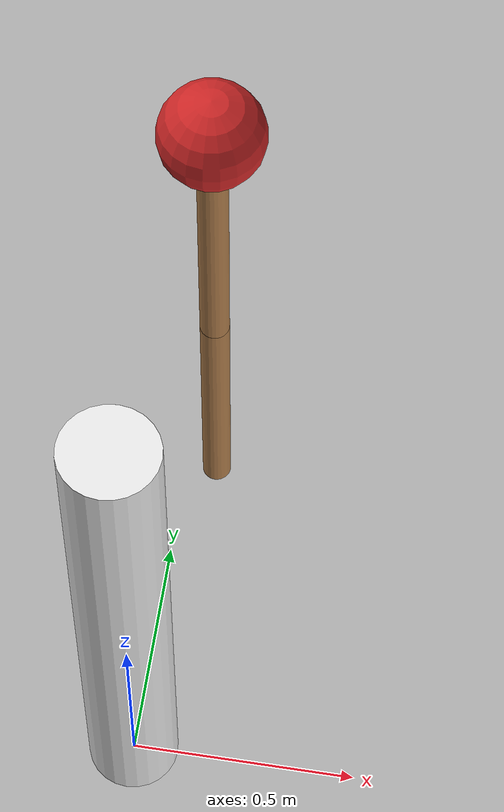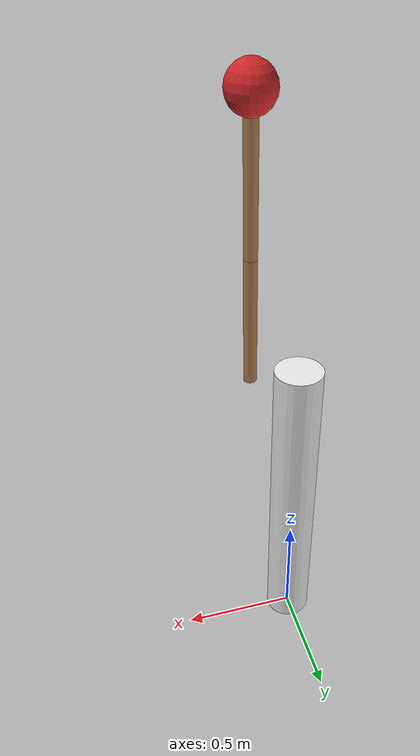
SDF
<sdf version="1.7">
  <model name="pendulum_two_link">
    <link name="base">
      <inertial>
        <inertia>
          <ixx>0.016583333333333332</ixx>
          <iyy>0.016583333333333332</iyy>
          <izz>0.0005000000000000001</izz>
          <ixy>0.0</ixy>
          <ixz>0.0</ixz>
          <iyz>0.0</iyz>
        </inertia>
        <mass>0.1</mass>
      </inertial>
      <pose>0.0 0.0 0.7 0.0 0.0 0.0</pose>
      <visual name="viz">
        <geometry>
          <cylinder>
            <radius>0.1</radius>
            <length>1.4</length>
          </cylinder>
        </geometry>
        <material>
          <script>
            <uri>file://media/materials/scripts/gazebo.material</uri>
            <name>Gazebo/White</name>
          </script>
        </material>
      </visual>
      <collision name="coll_base">
        <geometry>
          <cylinder>
            <radius>0.1</radius>
            <length>1.4</length>
          </cylinder>
        </geometry>
      </collision>
    </link>
    <link name="arm_1">
      <inertial>
        <inertia>
          <ixx>0.0020989583333333333</ixx>
          <iyy>0.0020989583333333333</iyy>
          <izz>3.125000000000001e-05</izz>
          <ixy>0.0</ixy>
          <ixz>0.0</ixz>
          <iyz>0.0</iyz>
        </inertia>
        <mass>0.1</mass>
      </inertial>
      <pose relative_to="base_arm_1/arm_1">0.0 0.0 0.25 0.0 0.0 0.0</pose>
      <visual name="viz_arm">
        <geometry>
          <cylinder>
            <radius>0.025</radius>
            <length>0.5</length>
          </cylinder>
        </geometry>
        <material>
          <script>
            <uri>file://media/materials/scripts/gazebo.material</uri>
            <name>Gazebo/Wood</name>
          </script>
        </material>
      </visual>
      <collision name="coll_arm_1">
        <geometry>
          <cylinder>
            <radius>0.025</radius>
            <length>0.5</length>
          </cylinder>
        </geometry>
      </collision>
    </link>
    <link name="arm_2">
      <inertial>
        <inertia>
          <ixx>0.0020989583333333333</ixx>
          <iyy>0.0020989583333333333</iyy>
          <izz>3.125000000000001e-05</izz>
          <ixy>0.0</ixy>
          <ixz>0.0</ixz>
          <iyz>0.0</iyz>
        </inertia>
        <mass>0.1</mass>
      </inertial>
      <pose relative_to="base_arm_2/arm_2">0.0 0.0 0.25 0.0 0.0 0.0</pose>
      <visual name="viz_arm">
        <geometry>
          <cylinder>
            <radius>0.025</radius>
            <length>0.5</length>
          </cylinder>
        </geometry>
        <material>
          <script>
            <uri>file://media/materials/scripts/gazebo.material</uri>
            <name>Gazebo/Wood</name>
          </script>
        </material>
      </visual>
      <collision name="coll_arm_2">
        <geometry>
          <cylinder>
            <radius>0.025</radius>
            <length>0.5</length>
          </cylinder>
        </geometry>
      </collision>
    </link>
    <link name="ball">
      <inertial>
        <inertia>
          <ixx>0.0024083333333333335</ixx>
          <iyy>0.0024083333333333335</iyy>
          <izz>0.0024083333333333335</izz>
          <ixy>0.0</ixy>
          <ixz>0.0</ixz>
          <iyz>0.0</iyz>
        </inertia>
        <mass>0.5</mass>
      </inertial>
      <pose relative_to="arm_ball/ball">0.0 0.0 0.0 0.0 0.0 0.0</pose>
      <visual name="viz">
        <geometry>
          <sphere>
            <radius>0.085</radius>
          </sphere>
        </geometry>
        <material>
          <script>
            <uri>file://media/materials/scripts/gazebo.material</uri>
            <name>Gazebo/Red</name>
          </script>
        </material>
      </visual>
      <collision name="coll_ball">
        <geometry>
          <sphere>
            <radius>0.085</radius>
          </sphere>
        </geometry>
      </collision>
    </link>
    <joint name="world_base/base" type="fixed">
      <pose>0.0 0.0 0.0 0.0 0.0 0.0</pose>
      <parent>world</parent>
      <child>base</child>
      <axis>
        <xyz>0.0 0.0 1.0</xyz>
      </axis>
    </joint>
    <joint name="base_arm_1/arm_1" type="revolute">
      <pose relative_to="base">0.2 0.0 0.7 0.0 0.0 0.0</pose>
      <parent>base</parent>
      <child>arm_1</child>
      <axis>
        <xyz>1.0 0.0 0.0</xyz>
      </axis>
    </joint>
    <joint name="base_arm_2/arm_2" type="revolute">
      <pose relative_to="arm_1">0.0 0.0 0.25 0.0 0.0 0.0</pose>
      <parent>arm_1</parent>
      <child>arm_2</child>
      <axis>
        <xyz>1.0 0.0 0.0</xyz>
      </axis>
    </joint>
    <joint name="arm_ball/ball" type="revolute">
      <pose relative_to="arm_2">0.0 0.0 0.3 0.0 0.0 0.0</pose>
      <parent>arm_2</parent>
      <child>ball</child>
      <axis>
        <xyz>0.0 0.0 1.0</xyz>
      </axis>
    </joint>
  </model>
</sdf>
